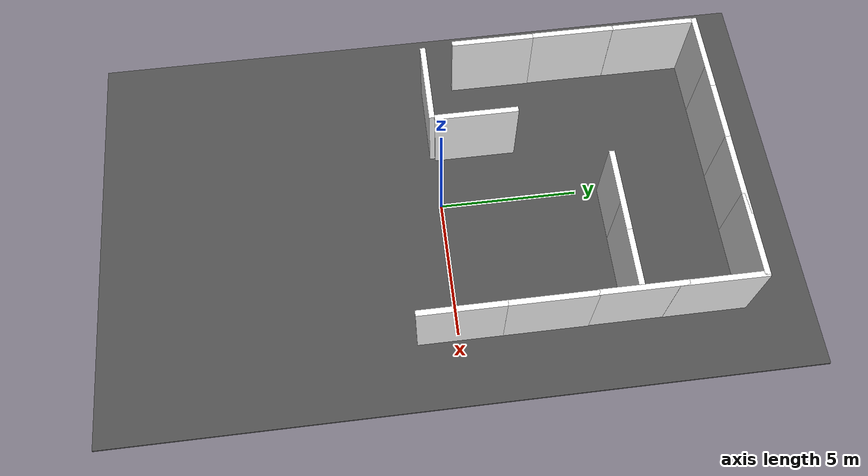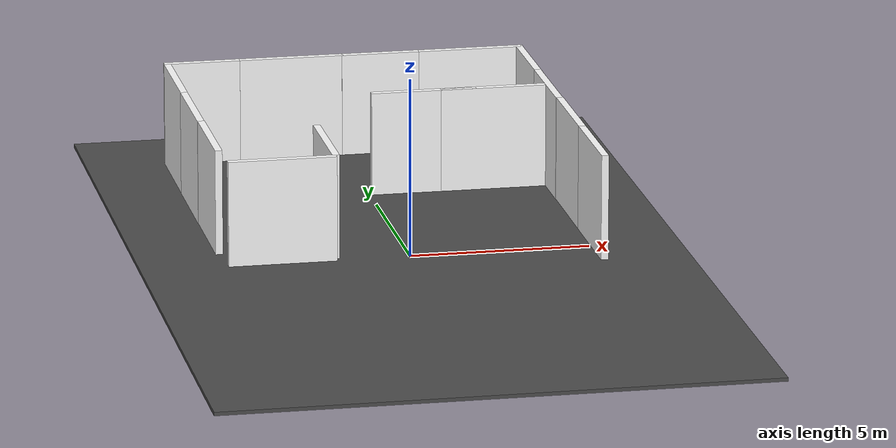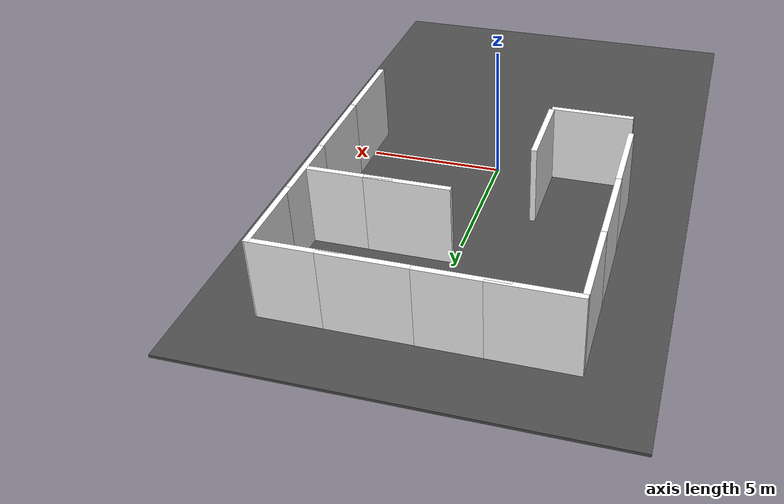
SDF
<sdf version="1.6">
 <world name="default">
  <model name="brick_box_3x0_2x3_0">
   <link name="chassis">
    <pose>0 0 1.5 0 -0 0</pose>
    <velocity_decay><linear>0</linear><angular>0</angular></velocity_decay>
    <inertial>
     <mass>1</mass>
     <inertia><ixx>1</ixx><ixy>0</ixy><ixz>0</ixz><iyy>1</iyy><iyz>0</iyz><izz>1</izz></inertia>
    </inertial>
    <visual name="visual">
     <geometry>
      <mesh><uri>model://brick_box_3x1x3/meshes/simple_box.dae</uri><scale>3 0.2 3</scale></mesh>
     </geometry>
     <material>
      <script>
       <uri>model://brick_box_3x1x3/materials/scripts</uri>
       <uri>model://brick_box_3x1x3/materials/textures</uri>
       <name>BrickBox/Diffuse</name>
      </script>
      <shader type="vertex"><normal_map>__default__</normal_map></shader>
      <ambient>1 1 1 1</ambient>
      <diffuse>1 1 1 1</diffuse>
      <specular>0 0 0 1</specular>
      <emissive>0 0 0 1</emissive>
     </material>
    </visual>
    <collision name="collision">
     <geometry><box><size>3 0.2 3</size></box></geometry>
     <surface>
      <friction>
       <ode><mu>1</mu><mu2>1</mu2><fdir1>0 0 0</fdir1><slip1>0</slip1><slip2>0</slip2></ode>
       <torsional>
        <coefficient>1</coefficient>
        <patch_radius>0</patch_radius>
        <surface_radius>0</surface_radius>
        <use_patch_radius>1</use_patch_radius>
        <ode><slip>0</slip></ode>
       </torsional>
      </friction>
      <bounce><restitution_coefficient>0</restitution_coefficient><threshold>1e+06</threshold></bounce>
      <contact>
       <collide_without_contact>0</collide_without_contact>
       <collide_without_contact_bitmask>1</collide_without_contact_bitmask>
       <collide_bitmask>1</collide_bitmask>
       <ode>
        <soft_cfm>0</soft_cfm>
        <soft_erp>0.2</soft_erp>
        <kp>1e+13</kp>
        <kd>1</kd>
        <max_vel>0.01</max_vel>
        <min_depth>0</min_depth>
       </ode>
       <bullet>
        <split_impulse>1</split_impulse>
        <split_impulse_penetration_threshold>-0.01</split_impulse_penetration_threshold>
        <soft_cfm>0</soft_cfm>
        <soft_erp>0.2</soft_erp>
        <kp>1e+13</kp>
        <kd>1</kd>
       </bullet>
      </contact>
     </surface>
    </collision>
   </link>
   <static>1</static>
   <pose>-1.51839 10.067 0 0 -0 0</pose>
  </model>
  <model name="brick_box_3x0_2x3_0_clone">
   <link name="chassis">
    <pose>0 0 1.5 0 -0 0</pose>
    <velocity_decay><linear>0</linear><angular>0</angular></velocity_decay>
    <inertial>
     <mass>1</mass>
     <inertia><ixx>1</ixx><ixy>0</ixy><ixz>0</ixz><iyy>1</iyy><iyz>0</iyz><izz>1</izz></inertia>
    </inertial>
    <visual name="visual">
     <geometry>
      <mesh><uri>model://brick_box_3x1x3/meshes/simple_box.dae</uri><scale>3 0.2 3</scale></mesh>
     </geometry>
     <material>
      <script>
       <uri>model://brick_box_3x1x3/materials/scripts</uri>
       <uri>model://brick_box_3x1x3/materials/textures</uri>
       <name>BrickBox/Diffuse</name>
      </script>
      <shader type="vertex"><normal_map>__default__</normal_map></shader>
      <ambient>1 1 1 1</ambient>
      <diffuse>1 1 1 1</diffuse>
      <specular>0 0 0 1</specular>
      <emissive>0 0 0 1</emissive>
     </material>
    </visual>
    <collision name="collision">
     <geometry><box><size>3 0.2 3</size></box></geometry>
     <surface>
      <friction>
       <ode><mu>1</mu><mu2>1</mu2><fdir1>0 0 0</fdir1><slip1>0</slip1><slip2>0</slip2></ode>
       <torsional>
        <coefficient>1</coefficient>
        <patch_radius>0</patch_radius>
        <surface_radius>0</surface_radius>
        <use_patch_radius>1</use_patch_radius>
        <ode><slip>0</slip></ode>
       </torsional>
      </friction>
      <bounce><restitution_coefficient>0</restitution_coefficient><threshold>1e+06</threshold></bounce>
      <contact>
       <collide_without_contact>0</collide_without_contact>
       <collide_without_contact_bitmask>1</collide_without_contact_bitmask>
       <collide_bitmask>1</collide_bitmask>
       <ode>
        <soft_cfm>0</soft_cfm>
        <soft_erp>0.2</soft_erp>
        <kp>1e+13</kp>
        <kd>1</kd>
        <max_vel>0.01</max_vel>
        <min_depth>0</min_depth>
       </ode>
       <bullet>
        <split_impulse>1</split_impulse>
        <split_impulse_penetration_threshold>-0.01</split_impulse_penetration_threshold>
        <soft_cfm>0</soft_cfm>
        <soft_erp>0.2</soft_erp>
        <kp>1e+13</kp>
        <kd>1</kd>
       </bullet>
      </contact>
     </surface>
    </collision>
   </link>
   <static>1</static>
   <pose>1.43593 10.0609 0 0 -0 0</pose>
  </model>
  <model name="brick_box_3x0_2x3_0_clone_0">
   <link name="chassis">
    <pose>0 0 1.5 0 -0 0</pose>
    <velocity_decay><linear>0</linear><angular>0</angular></velocity_decay>
    <inertial>
     <mass>1</mass>
     <inertia><ixx>1</ixx><ixy>0</ixy><ixz>0</ixz><iyy>1</iyy><iyz>0</iyz><izz>1</izz></inertia>
    </inertial>
    <visual name="visual">
     <geometry>
      <mesh><uri>model://brick_box_3x1x3/meshes/simple_box.dae</uri><scale>3 0.2 3</scale></mesh>
     </geometry>
     <material>
      <script>
       <uri>model://brick_box_3x1x3/materials/scripts</uri>
       <uri>model://brick_box_3x1x3/materials/textures</uri>
       <name>BrickBox/Diffuse</name>
      </script>
      <shader type="vertex"><normal_map>__default__</normal_map></shader>
      <ambient>1 1 1 1</ambient>
      <diffuse>1 1 1 1</diffuse>
      <specular>0 0 0 1</specular>
      <emissive>0 0 0 1</emissive>
     </material>
    </visual>
    <collision name="collision">
     <geometry><box><size>3 0.2 3</size></box></geometry>
     <surface>
      <friction>
       <ode><mu>1</mu><mu2>1</mu2><fdir1>0 0 0</fdir1><slip1>0</slip1><slip2>0</slip2></ode>
       <torsional>
        <coefficient>1</coefficient>
        <patch_radius>0</patch_radius>
        <surface_radius>0</surface_radius>
        <use_patch_radius>1</use_patch_radius>
        <ode><slip>0</slip></ode>
       </torsional>
      </friction>
      <bounce><restitution_coefficient>0</restitution_coefficient><threshold>1e+06</threshold></bounce>
      <contact>
       <collide_without_contact>0</collide_without_contact>
       <collide_without_contact_bitmask>1</collide_without_contact_bitmask>
       <collide_bitmask>1</collide_bitmask>
       <ode>
        <soft_cfm>0</soft_cfm>
        <soft_erp>0.2</soft_erp>
        <kp>1e+13</kp>
        <kd>1</kd>
        <max_vel>0.01</max_vel>
        <min_depth>0</min_depth>
       </ode>
       <bullet>
        <split_impulse>1</split_impulse>
        <split_impulse_penetration_threshold>-0.01</split_impulse_penetration_threshold>
        <soft_cfm>0</soft_cfm>
        <soft_erp>0.2</soft_erp>
        <kp>1e+13</kp>
        <kd>1</kd>
       </bullet>
      </contact>
     </surface>
    </collision>
   </link>
   <static>1</static>
   <pose>3.67716 10.056 0 0 -0 0</pose>
  </model>
  <model name="brick_box_3x0_2x3_0_clone_1">
   <link name="chassis">
    <pose>0 0 1.5 0 -0 0</pose>
    <velocity_decay><linear>0</linear><angular>0</angular></velocity_decay>
    <inertial>
     <mass>1</mass>
     <inertia><ixx>1</ixx><ixy>0</ixy><ixz>0</ixz><iyy>1</iyy><iyz>0</iyz><izz>1</izz></inertia>
    </inertial>
    <visual name="visual">
     <geometry>
      <mesh><uri>model://brick_box_3x1x3/meshes/simple_box.dae</uri><scale>3 0.2 3</scale></mesh>
     </geometry>
     <material>
      <script>
       <uri>model://brick_box_3x1x3/materials/scripts</uri>
       <uri>model://brick_box_3x1x3/materials/textures</uri>
       <name>BrickBox/Diffuse</name>
      </script>
      <shader type="vertex"><normal_map>__default__</normal_map></shader>
      <ambient>1 1 1 1</ambient>
      <diffuse>1 1 1 1</diffuse>
      <specular>0 0 0 1</specular>
      <emissive>0 0 0 1</emissive>
     </material>
    </visual>
    <collision name="collision">
     <geometry><box><size>3 0.2 3</size></box></geometry>
     <surface>
      <friction>
       <ode><mu>1</mu><mu2>1</mu2><fdir1>0 0 0</fdir1><slip1>0</slip1><slip2>0</slip2></ode>
       <torsional>
        <coefficient>1</coefficient>
        <patch_radius>0</patch_radius>
        <surface_radius>0</surface_radius>
        <use_patch_radius>1</use_patch_radius>
        <ode><slip>0</slip></ode>
       </torsional>
      </friction>
      <bounce><restitution_coefficient>0</restitution_coefficient><threshold>1e+06</threshold></bounce>
      <contact>
       <collide_without_contact>0</collide_without_contact>
       <collide_without_contact_bitmask>1</collide_without_contact_bitmask>
       <collide_bitmask>1</collide_bitmask>
       <ode>
        <soft_cfm>0</soft_cfm>
        <soft_erp>0.2</soft_erp>
        <kp>1e+13</kp>
        <kd>1</kd>
        <max_vel>0.01</max_vel>
        <min_depth>0</min_depth>
       </ode>
       <bullet>
        <split_impulse>1</split_impulse>
        <split_impulse_penetration_threshold>-0.01</split_impulse_penetration_threshold>
        <soft_cfm>0</soft_cfm>
        <soft_erp>0.2</soft_erp>
        <kp>1e+13</kp>
        <kd>1</kd>
       </bullet>
      </contact>
     </surface>
    </collision>
   </link>
   <static>1</static>
   <pose>-3.69017 10.0671 0 0 -0 0</pose>
  </model>
  <model name="brick_box_3x0_2x3_0_clone_2">
   <link name="chassis">
    <pose>0 0 1.5 0 -0 0</pose>
    <velocity_decay><linear>0</linear><angular>0</angular></velocity_decay>
    <inertial>
     <mass>1</mass>
     <inertia><ixx>1</ixx><ixy>0</ixy><ixz>0</ixz><iyy>1</iyy><iyz>0</iyz><izz>1</izz></inertia>
    </inertial>
    <visual name="visual">
     <geometry>
      <mesh><uri>model://brick_box_3x1x3/meshes/simple_box.dae</uri><scale>3 0.2 3</scale></mesh>
     </geometry>
     <material>
      <script>
       <uri>model://brick_box_3x1x3/materials/scripts</uri>
       <uri>model://brick_box_3x1x3/materials/textures</uri>
       <name>BrickBox/Diffuse</name>
      </script>
      <shader type="vertex"><normal_map>__default__</normal_map></shader>
      <ambient>1 1 1 1</ambient>
      <diffuse>1 1 1 1</diffuse>
      <specular>0 0 0 1</specular>
      <emissive>0 0 0 1</emissive>
     </material>
    </visual>
    <collision name="collision">
     <geometry><box><size>3 0.2 3</size></box></geometry>
     <surface>
      <friction>
       <ode><mu>1</mu><mu2>1</mu2><fdir1>0 0 0</fdir1><slip1>0</slip1><slip2>0</slip2></ode>
       <torsional>
        <coefficient>1</coefficient>
        <patch_radius>0</patch_radius>
        <surface_radius>0</surface_radius>
        <use_patch_radius>1</use_patch_radius>
        <ode><slip>0</slip></ode>
       </torsional>
      </friction>
      <bounce><restitution_coefficient>0</restitution_coefficient><threshold>1e+06</threshold></bounce>
      <contact>
       <collide_without_contact>0</collide_without_contact>
       <collide_without_contact_bitmask>1</collide_without_contact_bitmask>
       <collide_bitmask>1</collide_bitmask>
       <ode>
        <soft_cfm>0</soft_cfm>
        <soft_erp>0.2</soft_erp>
        <kp>1e+13</kp>
        <kd>1</kd>
        <max_vel>0.01</max_vel>
        <min_depth>0</min_depth>
       </ode>
       <bullet>
        <split_impulse>1</split_impulse>
        <split_impulse_penetration_threshold>-0.01</split_impulse_penetration_threshold>
        <soft_cfm>0</soft_cfm>
        <soft_erp>0.2</soft_erp>
        <kp>1e+13</kp>
        <kd>1</kd>
       </bullet>
      </contact>
     </surface>
    </collision>
   </link>
   <static>1</static>
   <pose>-5.10653 8.4779 0 0 -0 1.57</pose>
  </model>
  <model name="brick_box_3x0_2x3_0_clone_2_clone">
   <link name="chassis">
    <pose>0 0 1.5 0 -0 0</pose>
    <velocity_decay><linear>0</linear><angular>0</angular></velocity_decay>
    <inertial>
     <mass>1</mass>
     <inertia><ixx>1</ixx><ixy>0</ixy><ixz>0</ixz><iyy>1</iyy><iyz>0</iyz><izz>1</izz></inertia>
    </inertial>
    <visual name="visual">
     <geometry>
      <mesh><uri>model://brick_box_3x1x3/meshes/simple_box.dae</uri><scale>3 0.2 3</scale></mesh>
     </geometry>
     <material>
      <script>
       <uri>model://brick_box_3x1x3/materials/scripts</uri>
       <uri>model://brick_box_3x1x3/materials/textures</uri>
       <name>BrickBox/Diffuse</name>
      </script>
      <shader type="vertex"><normal_map>__default__</normal_map></shader>
      <ambient>1 1 1 1</ambient>
      <diffuse>1 1 1 1</diffuse>
      <specular>0 0 0 1</specular>
      <emissive>0 0 0 1</emissive>
     </material>
    </visual>
    <collision name="collision">
     <geometry><box><size>3 0.2 3</size></box></geometry>
     <surface>
      <friction>
       <ode><mu>1</mu><mu2>1</mu2><fdir1>0 0 0</fdir1><slip1>0</slip1><slip2>0</slip2></ode>
       <torsional>
        <coefficient>1</coefficient>
        <patch_radius>0</patch_radius>
        <surface_radius>0</surface_radius>
        <use_patch_radius>1</use_patch_radius>
        <ode><slip>0</slip></ode>
       </torsional>
      </friction>
      <bounce><restitution_coefficient>0</restitution_coefficient><threshold>1e+06</threshold></bounce>
      <contact>
       <collide_without_contact>0</collide_without_contact>
       <collide_without_contact_bitmask>1</collide_without_contact_bitmask>
       <collide_bitmask>1</collide_bitmask>
       <ode>
        <soft_cfm>0</soft_cfm>
        <soft_erp>0.2</soft_erp>
        <kp>1e+13</kp>
        <kd>1</kd>
        <max_vel>0.01</max_vel>
        <min_depth>0</min_depth>
       </ode>
       <bullet>
        <split_impulse>1</split_impulse>
        <split_impulse_penetration_threshold>-0.01</split_impulse_penetration_threshold>
        <soft_cfm>0</soft_cfm>
        <soft_erp>0.2</soft_erp>
        <kp>1e+13</kp>
        <kd>1</kd>
       </bullet>
      </contact>
     </surface>
    </collision>
   </link>
   <static>1</static>
   <pose>-5.11526 5.49974 0 0 -0 1.57</pose>
  </model>
  <model name="brick_box_3x0_2x3_0_clone_2_clone_0">
   <link name="chassis">
    <pose>0 0 1.5 0 -0 0</pose>
    <velocity_decay><linear>0</linear><angular>0</angular></velocity_decay>
    <inertial>
     <mass>1</mass>
     <inertia><ixx>1</ixx><ixy>0</ixy><ixz>0</ixz><iyy>1</iyy><iyz>0</iyz><izz>1</izz></inertia>
    </inertial>
    <visual name="visual">
     <geometry>
      <mesh><uri>model://brick_box_3x1x3/meshes/simple_box.dae</uri><scale>3 0.2 3</scale></mesh>
     </geometry>
     <material>
      <script>
       <uri>model://brick_box_3x1x3/materials/scripts</uri>
       <uri>model://brick_box_3x1x3/materials/textures</uri>
       <name>BrickBox/Diffuse</name>
      </script>
      <shader type="vertex"><normal_map>__default__</normal_map></shader>
      <ambient>1 1 1 1</ambient>
      <diffuse>1 1 1 1</diffuse>
      <specular>0 0 0 1</specular>
      <emissive>0 0 0 1</emissive>
     </material>
    </visual>
    <collision name="collision">
     <geometry><box><size>3 0.2 3</size></box></geometry>
     <surface>
      <friction>
       <ode><mu>1</mu><mu2>1</mu2><fdir1>0 0 0</fdir1><slip1>0</slip1><slip2>0</slip2></ode>
       <torsional>
        <coefficient>1</coefficient>
        <patch_radius>0</patch_radius>
        <surface_radius>0</surface_radius>
        <use_patch_radius>1</use_patch_radius>
        <ode><slip>0</slip></ode>
       </torsional>
      </friction>
      <bounce><restitution_coefficient>0</restitution_coefficient><threshold>1e+06</threshold></bounce>
      <contact>
       <collide_without_contact>0</collide_without_contact>
       <collide_without_contact_bitmask>1</collide_without_contact_bitmask>
       <collide_bitmask>1</collide_bitmask>
       <ode>
        <soft_cfm>0</soft_cfm>
        <soft_erp>0.2</soft_erp>
        <kp>1e+13</kp>
        <kd>1</kd>
        <max_vel>0.01</max_vel>
        <min_depth>0</min_depth>
       </ode>
       <bullet>
        <split_impulse>1</split_impulse>
        <split_impulse_penetration_threshold>-0.01</split_impulse_penetration_threshold>
        <soft_cfm>0</soft_cfm>
        <soft_erp>0.2</soft_erp>
        <kp>1e+13</kp>
        <kd>1</kd>
       </bullet>
      </contact>
     </surface>
    </collision>
   </link>
   <static>1</static>
   <pose>-5.10794 2.50232 0 0 -0 1.57</pose>
  </model>
  <model name="brick_box_3x0_2x3_0_clone_2_clone_1_clone_1_clone_2">
   <link name="chassis">
    <pose>0 0 1.5 0 -0 0</pose>
    <velocity_decay><linear>0</linear><angular>0</angular></velocity_decay>
    <inertial>
     <mass>1</mass>
     <inertia><ixx>1</ixx><ixy>0</ixy><ixz>0</ixz><iyy>1</iyy><iyz>0</iyz><izz>1</izz></inertia>
    </inertial>
    <visual name="visual">
     <geometry>
      <mesh><uri>model://brick_box_3x1x3/meshes/simple_box.dae</uri><scale>3 0.2 3</scale></mesh>
     </geometry>
     <material>
      <script>
       <uri>model://brick_box_3x1x3/materials/scripts</uri>
       <uri>model://brick_box_3x1x3/materials/textures</uri>
       <name>BrickBox/Diffuse</name>
      </script>
      <shader type="vertex"><normal_map>__default__</normal_map></shader>
      <ambient>1 1 1 1</ambient>
      <diffuse>1 1 1 1</diffuse>
      <specular>0 0 0 1</specular>
      <emissive>0 0 0 1</emissive>
     </material>
    </visual>
    <collision name="collision">
     <geometry><box><size>3 0.2 3</size></box></geometry>
     <surface>
      <friction>
       <ode><mu>1</mu><mu2>1</mu2><fdir1>0 0 0</fdir1><slip1>0</slip1><slip2>0</slip2></ode>
       <torsional>
        <coefficient>1</coefficient>
        <patch_radius>0</patch_radius>
        <surface_radius>0</surface_radius>
        <use_patch_radius>1</use_patch_radius>
        <ode><slip>0</slip></ode>
       </torsional>
      </friction>
      <bounce><restitution_coefficient>0</restitution_coefficient><threshold>1e+06</threshold></bounce>
      <contact>
       <collide_without_contact>0</collide_without_contact>
       <collide_without_contact_bitmask>1</collide_without_contact_bitmask>
       <collide_bitmask>1</collide_bitmask>
       <ode>
        <soft_cfm>0</soft_cfm>
        <soft_erp>0.2</soft_erp>
        <kp>1e+13</kp>
        <kd>1</kd>
        <max_vel>0.01</max_vel>
        <min_depth>0</min_depth>
       </ode>
       <bullet>
        <split_impulse>1</split_impulse>
        <split_impulse_penetration_threshold>-0.01</split_impulse_penetration_threshold>
        <soft_cfm>0</soft_cfm>
        <soft_erp>0.2</soft_erp>
        <kp>1e+13</kp>
        <kd>1</kd>
       </bullet>
      </contact>
     </surface>
    </collision>
   </link>
   <static>1</static>
   <pose>5.11899 0.040939 0 0 -0 1.57</pose>
  </model>
  <model name="brick_box_3x0_2x3_0_clone_2_clone_1_clone_1_clone_3">
   <link name="chassis">
    <pose>0 0 1.5 0 -0 0</pose>
    <velocity_decay><linear>0</linear><angular>0</angular></velocity_decay>
    <inertial>
     <mass>1</mass>
     <inertia><ixx>1</ixx><ixy>0</ixy><ixz>0</ixz><iyy>1</iyy><iyz>0</iyz><izz>1</izz></inertia>
    </inertial>
    <visual name="visual">
     <geometry>
      <mesh><uri>model://brick_box_3x1x3/meshes/simple_box.dae</uri><scale>3 0.2 3</scale></mesh>
     </geometry>
     <material>
      <script>
       <uri>model://brick_box_3x1x3/materials/scripts</uri>
       <uri>model://brick_box_3x1x3/materials/textures</uri>
       <name>BrickBox/Diffuse</name>
      </script>
      <shader type="vertex"><normal_map>__default__</normal_map></shader>
      <ambient>1 1 1 1</ambient>
      <diffuse>1 1 1 1</diffuse>
      <specular>0 0 0 1</specular>
      <emissive>0 0 0 1</emissive>
     </material>
    </visual>
    <collision name="collision">
     <geometry><box><size>3 0.2 3</size></box></geometry>
     <surface>
      <friction>
       <ode><mu>1</mu><mu2>1</mu2><fdir1>0 0 0</fdir1><slip1>0</slip1><slip2>0</slip2></ode>
       <torsional>
        <coefficient>1</coefficient>
        <patch_radius>0</patch_radius>
        <surface_radius>0</surface_radius>
        <use_patch_radius>1</use_patch_radius>
        <ode><slip>0</slip></ode>
       </torsional>
      </friction>
      <bounce><restitution_coefficient>0</restitution_coefficient><threshold>1e+06</threshold></bounce>
      <contact>
       <collide_without_contact>0</collide_without_contact>
       <collide_without_contact_bitmask>1</collide_without_contact_bitmask>
       <collide_bitmask>1</collide_bitmask>
       <ode>
        <soft_cfm>0</soft_cfm>
        <soft_erp>0.2</soft_erp>
        <kp>1e+13</kp>
        <kd>1</kd>
        <max_vel>0.01</max_vel>
        <min_depth>0</min_depth>
       </ode>
       <bullet>
        <split_impulse>1</split_impulse>
        <split_impulse_penetration_threshold>-0.01</split_impulse_penetration_threshold>
        <soft_cfm>0</soft_cfm>
        <soft_erp>0.2</soft_erp>
        <kp>1e+13</kp>
        <kd>1</kd>
       </bullet>
      </contact>
     </surface>
    </collision>
   </link>
   <static>1</static>
   <pose>5.12258 3.02481 0 0 -0 1.57</pose>
  </model>
  <model name="brick_box_3x0_2x3_0_clone_2_clone_1_clone_1_clone_3_clone">
   <link name="chassis">
    <pose>0 0 1.5 0 -0 0</pose>
    <velocity_decay><linear>0</linear><angular>0</angular></velocity_decay>
    <inertial>
     <mass>1</mass>
     <inertia><ixx>1</ixx><ixy>0</ixy><ixz>0</ixz><iyy>1</iyy><iyz>0</iyz><izz>1</izz></inertia>
    </inertial>
    <visual name="visual">
     <geometry>
      <mesh><uri>model://brick_box_3x1x3/meshes/simple_box.dae</uri><scale>3 0.2 3</scale></mesh>
     </geometry>
     <material>
      <script>
       <uri>model://brick_box_3x1x3/materials/scripts</uri>
       <uri>model://brick_box_3x1x3/materials/textures</uri>
       <name>BrickBox/Diffuse</name>
      </script>
      <shader type="vertex"><normal_map>__default__</normal_map></shader>
      <ambient>1 1 1 1</ambient>
      <diffuse>1 1 1 1</diffuse>
      <specular>0 0 0 1</specular>
      <emissive>0 0 0 1</emissive>
     </material>
    </visual>
    <collision name="collision">
     <geometry><box><size>3 0.2 3</size></box></geometry>
     <surface>
      <friction>
       <ode><mu>1</mu><mu2>1</mu2><fdir1>0 0 0</fdir1><slip1>0</slip1><slip2>0</slip2></ode>
       <torsional>
        <coefficient>1</coefficient>
        <patch_radius>0</patch_radius>
        <surface_radius>0</surface_radius>
        <use_patch_radius>1</use_patch_radius>
        <ode><slip>0</slip></ode>
       </torsional>
      </friction>
      <bounce><restitution_coefficient>0</restitution_coefficient><threshold>1e+06</threshold></bounce>
      <contact>
       <collide_without_contact>0</collide_without_contact>
       <collide_without_contact_bitmask>1</collide_without_contact_bitmask>
       <collide_bitmask>1</collide_bitmask>
       <ode>
        <soft_cfm>0</soft_cfm>
        <soft_erp>0.2</soft_erp>
        <kp>1e+13</kp>
        <kd>1</kd>
        <max_vel>0.01</max_vel>
        <min_depth>0</min_depth>
       </ode>
       <bullet>
        <split_impulse>1</split_impulse>
        <split_impulse_penetration_threshold>-0.01</split_impulse_penetration_threshold>
        <soft_cfm>0</soft_cfm>
        <soft_erp>0.2</soft_erp>
        <kp>1e+13</kp>
        <kd>1</kd>
       </bullet>
      </contact>
     </surface>
    </collision>
   </link>
   <static>1</static>
   <pose>5.11091 5.97832 0 0 -0 1.57</pose>
  </model>
  <model name="brick_box_3x0_2x3_0_clone_2_clone_1_clone_1_clone_3_clone_0">
   <link name="chassis">
    <pose>0 0 1.5 0 -0 0</pose>
    <velocity_decay><linear>0</linear><angular>0</angular></velocity_decay>
    <inertial>
     <mass>1</mass>
     <inertia><ixx>1</ixx><ixy>0</ixy><ixz>0</ixz><iyy>1</iyy><iyz>0</iyz><izz>1</izz></inertia>
    </inertial>
    <visual name="visual">
     <geometry>
      <mesh><uri>model://brick_box_3x1x3/meshes/simple_box.dae</uri><scale>3 0.2 3</scale></mesh>
     </geometry>
     <material>
      <script>
       <uri>model://brick_box_3x1x3/materials/scripts</uri>
       <uri>model://brick_box_3x1x3/materials/textures</uri>
       <name>BrickBox/Diffuse</name>
      </script>
      <shader type="vertex"><normal_map>__default__</normal_map></shader>
      <ambient>1 1 1 1</ambient>
      <diffuse>1 1 1 1</diffuse>
      <specular>0 0 0 1</specular>
      <emissive>0 0 0 1</emissive>
     </material>
    </visual>
    <collision name="collision">
     <geometry><box><size>3 0.2 3</size></box></geometry>
     <surface>
      <friction>
       <ode><mu>1</mu><mu2>1</mu2><fdir1>0 0 0</fdir1><slip1>0</slip1><slip2>0</slip2></ode>
       <torsional>
        <coefficient>1</coefficient>
        <patch_radius>0</patch_radius>
        <surface_radius>0</surface_radius>
        <use_patch_radius>1</use_patch_radius>
        <ode><slip>0</slip></ode>
       </torsional>
      </friction>
      <bounce><restitution_coefficient>0</restitution_coefficient><threshold>1e+06</threshold></bounce>
      <contact>
       <collide_without_contact>0</collide_without_contact>
       <collide_without_contact_bitmask>1</collide_without_contact_bitmask>
       <collide_bitmask>1</collide_bitmask>
       <ode>
        <soft_cfm>0</soft_cfm>
        <soft_erp>0.2</soft_erp>
        <kp>1e+13</kp>
        <kd>1</kd>
        <max_vel>0.01</max_vel>
        <min_depth>0</min_depth>
       </ode>
       <bullet>
        <split_impulse>1</split_impulse>
        <split_impulse_penetration_threshold>-0.01</split_impulse_penetration_threshold>
        <soft_cfm>0</soft_cfm>
        <soft_erp>0.2</soft_erp>
        <kp>1e+13</kp>
        <kd>1</kd>
       </bullet>
      </contact>
     </surface>
    </collision>
   </link>
   <static>1</static>
   <pose>5.1189 8.65328 0 0 -0 1.57</pose>
  </model>
  <model name="brick_box_3x0_2x3_0_clone_0_clone">
   <link name="chassis">
    <pose>0 0 1.5 0 -0 0</pose>
    <velocity_decay><linear>0</linear><angular>0</angular></velocity_decay>
    <inertial>
     <mass>1</mass>
     <inertia><ixx>1</ixx><ixy>0</ixy><ixz>0</ixz><iyy>1</iyy><iyz>0</iyz><izz>1</izz></inertia>
    </inertial>
    <visual name="visual">
     <geometry>
      <mesh><uri>model://brick_box_3x1x3/meshes/simple_box.dae</uri><scale>3 0.2 3</scale></mesh>
     </geometry>
     <material>
      <script>
       <uri>model://brick_box_3x1x3/materials/scripts</uri>
       <uri>model://brick_box_3x1x3/materials/textures</uri>
       <name>BrickBox/Diffuse</name>
      </script>
      <shader type="vertex"><normal_map>__default__</normal_map></shader>
      <ambient>1 1 1 1</ambient>
      <diffuse>1 1 1 1</diffuse>
      <specular>0 0 0 1</specular>
      <emissive>0 0 0 1</emissive>
     </material>
    </visual>
    <collision name="collision">
     <geometry><box><size>3 0.2 3</size></box></geometry>
     <surface>
      <friction>
       <ode><mu>1</mu><mu2>1</mu2><fdir1>0 0 0</fdir1><slip1>0</slip1><slip2>0</slip2></ode>
       <torsional>
        <coefficient>1</coefficient>
        <patch_radius>0</patch_radius>
        <surface_radius>0</surface_radius>
        <use_patch_radius>1</use_patch_radius>
        <ode><slip>0</slip></ode>
       </torsional>
      </friction>
      <bounce><restitution_coefficient>0</restitution_coefficient><threshold>1e+06</threshold></bounce>
      <contact>
       <collide_without_contact>0</collide_without_contact>
       <collide_without_contact_bitmask>1</collide_without_contact_bitmask>
       <collide_bitmask>1</collide_bitmask>
       <ode>
        <soft_cfm>0</soft_cfm>
        <soft_erp>0.2</soft_erp>
        <kp>1e+13</kp>
        <kd>1</kd>
        <max_vel>0.01</max_vel>
        <min_depth>0</min_depth>
       </ode>
       <bullet>
        <split_impulse>1</split_impulse>
        <split_impulse_penetration_threshold>-0.01</split_impulse_penetration_threshold>
        <soft_cfm>0</soft_cfm>
        <soft_erp>0.2</soft_erp>
        <kp>1e+13</kp>
        <kd>1</kd>
       </bullet>
      </contact>
     </surface>
    </collision>
   </link>
   <static>1</static>
   <pose>3.50992 5.92113 0 0 -0 0</pose>
  </model>
  <model name="brick_box_3x0_2x3_0_clone_0_clone_0">
   <link name="chassis">
    <pose>0 0 1.5 0 -0 0</pose>
    <velocity_decay><linear>0</linear><angular>0</angular></velocity_decay>
    <inertial>
     <mass>1</mass>
     <inertia><ixx>1</ixx><ixy>0</ixy><ixz>0</ixz><iyy>1</iyy><iyz>0</iyz><izz>1</izz></inertia>
    </inertial>
    <visual name="visual">
     <geometry>
      <mesh><uri>model://brick_box_3x1x3/meshes/simple_box.dae</uri><scale>3 0.2 3</scale></mesh>
     </geometry>
     <material>
      <script>
       <uri>model://brick_box_3x1x3/materials/scripts</uri>
       <uri>model://brick_box_3x1x3/materials/textures</uri>
       <name>BrickBox/Diffuse</name>
      </script>
      <shader type="vertex"><normal_map>__default__</normal_map></shader>
      <ambient>1 1 1 1</ambient>
      <diffuse>1 1 1 1</diffuse>
      <specular>0 0 0 1</specular>
      <emissive>0 0 0 1</emissive>
     </material>
    </visual>
    <collision name="collision">
     <geometry><box><size>3 0.2 3</size></box></geometry>
     <surface>
      <friction>
       <ode><mu>1</mu><mu2>1</mu2><fdir1>0 0 0</fdir1><slip1>0</slip1><slip2>0</slip2></ode>
       <torsional>
        <coefficient>1</coefficient>
        <patch_radius>0</patch_radius>
        <surface_radius>0</surface_radius>
        <use_patch_radius>1</use_patch_radius>
        <ode><slip>0</slip></ode>
       </torsional>
      </friction>
      <bounce><restitution_coefficient>0</restitution_coefficient><threshold>1e+06</threshold></bounce>
      <contact>
       <collide_without_contact>0</collide_without_contact>
       <collide_without_contact_bitmask>1</collide_without_contact_bitmask>
       <collide_bitmask>1</collide_bitmask>
       <ode>
        <soft_cfm>0</soft_cfm>
        <soft_erp>0.2</soft_erp>
        <kp>1e+13</kp>
        <kd>1</kd>
        <max_vel>0.01</max_vel>
        <min_depth>0</min_depth>
       </ode>
       <bullet>
        <split_impulse>1</split_impulse>
        <split_impulse_penetration_threshold>-0.01</split_impulse_penetration_threshold>
        <soft_cfm>0</soft_cfm>
        <soft_erp>0.2</soft_erp>
        <kp>1e+13</kp>
        <kd>1</kd>
       </bullet>
      </contact>
     </surface>
    </collision>
   </link>
   <static>1</static>
   <pose>1.52474 5.92543 0 0 -0 0</pose>
  </model>
  <model name="brick_box_3x0_2x3_0_clone_0_clone_0_clone">
   <link name="chassis">
    <pose>0 0 1.5 0 -0 0</pose>
    <velocity_decay><linear>0</linear><angular>0</angular></velocity_decay>
    <inertial>
     <mass>1</mass>
     <inertia><ixx>1</ixx><ixy>0</ixy><ixz>0</ixz><iyy>1</iyy><iyz>0</iyz><izz>1</izz></inertia>
    </inertial>
    <visual name="visual">
     <geometry>
      <mesh><uri>model://brick_box_3x1x3/meshes/simple_box.dae</uri><scale>3 0.2 3</scale></mesh>
     </geometry>
     <material>
      <script>
       <uri>model://brick_box_3x1x3/materials/scripts</uri>
       <uri>model://brick_box_3x1x3/materials/textures</uri>
       <name>BrickBox/Diffuse</name>
      </script>
      <shader type="vertex"><normal_map>__default__</normal_map></shader>
      <ambient>1 1 1 1</ambient>
      <diffuse>1 1 1 1</diffuse>
      <specular>0 0 0 1</specular>
      <emissive>0 0 0 1</emissive>
     </material>
    </visual>
    <collision name="collision">
     <geometry><box><size>3 0.2 3</size></box></geometry>
     <surface>
      <friction>
       <ode><mu>1</mu><mu2>1</mu2><fdir1>0 0 0</fdir1><slip1>0</slip1><slip2>0</slip2></ode>
       <torsional>
        <coefficient>1</coefficient>
        <patch_radius>0</patch_radius>
        <surface_radius>0</surface_radius>
        <use_patch_radius>1</use_patch_radius>
        <ode><slip>0</slip></ode>
       </torsional>
      </friction>
      <bounce><restitution_coefficient>0</restitution_coefficient><threshold>1e+06</threshold></bounce>
      <contact>
       <collide_without_contact>0</collide_without_contact>
       <collide_without_contact_bitmask>1</collide_without_contact_bitmask>
       <collide_bitmask>1</collide_bitmask>
       <ode>
        <soft_cfm>0</soft_cfm>
        <soft_erp>0.2</soft_erp>
        <kp>1e+13</kp>
        <kd>1</kd>
        <max_vel>0.01</max_vel>
        <min_depth>0</min_depth>
       </ode>
       <bullet>
        <split_impulse>1</split_impulse>
        <split_impulse_penetration_threshold>-0.01</split_impulse_penetration_threshold>
        <soft_cfm>0</soft_cfm>
        <soft_erp>0.2</soft_erp>
        <kp>1e+13</kp>
        <kd>1</kd>
       </bullet>
      </contact>
     </surface>
    </collision>
   </link>
   <static>1</static>
   <pose>-3.54602 -0.093601 0 0 -0 0</pose>
  </model>
  <model name="brick_box_3x0_2x3_0_clone_2_clone_1_clone_1_clone_0_clone_clone_clone_1">
   <link name="chassis">
    <pose>0 0 1.5 0 -0 0</pose>
    <velocity_decay><linear>0</linear><angular>0</angular></velocity_decay>
    <inertial>
     <mass>1</mass>
     <inertia><ixx>1</ixx><ixy>0</ixy><ixz>0</ixz><iyy>1</iyy><iyz>0</iyz><izz>1</izz></inertia>
    </inertial>
    <visual name="visual">
     <geometry>
      <mesh><uri>model://brick_box_3x1x3/meshes/simple_box.dae</uri><scale>3 0.2 3</scale></mesh>
     </geometry>
     <material>
      <script>
       <uri>model://brick_box_3x1x3/materials/scripts</uri>
       <uri>model://brick_box_3x1x3/materials/textures</uri>
       <name>BrickBox/Diffuse</name>
      </script>
      <shader type="vertex"><normal_map>__default__</normal_map></shader>
      <ambient>1 1 1 1</ambient>
      <diffuse>1 1 1 1</diffuse>
      <specular>0 0 0 1</specular>
      <emissive>0 0 0 1</emissive>
     </material>
    </visual>
    <collision name="collision">
     <geometry><box><size>3 0.2 3</size></box></geometry>
     <surface>
      <friction>
       <ode><mu>1</mu><mu2>1</mu2><fdir1>0 0 0</fdir1><slip1>0</slip1><slip2>0</slip2></ode>
       <torsional>
        <coefficient>1</coefficient>
        <patch_radius>0</patch_radius>
        <surface_radius>0</surface_radius>
        <use_patch_radius>1</use_patch_radius>
        <ode><slip>0</slip></ode>
       </torsional>
      </friction>
      <bounce><restitution_coefficient>0</restitution_coefficient><threshold>1e+06</threshold></bounce>
      <contact>
       <collide_without_contact>0</collide_without_contact>
       <collide_without_contact_bitmask>1</collide_without_contact_bitmask>
       <collide_bitmask>1</collide_bitmask>
       <ode>
        <soft_cfm>0</soft_cfm>
        <soft_erp>0.2</soft_erp>
        <kp>1e+13</kp>
        <kd>1</kd>
        <max_vel>0.01</max_vel>
        <min_depth>0</min_depth>
       </ode>
       <bullet>
        <split_impulse>1</split_impulse>
        <split_impulse_penetration_threshold>-0.01</split_impulse_penetration_threshold>
        <soft_cfm>0</soft_cfm>
        <soft_erp>0.2</soft_erp>
        <kp>1e+13</kp>
        <kd>1</kd>
       </bullet>
      </contact>
     </surface>
    </collision>
   </link>
   <static>1</static>
   <pose>-2.04733 1.49531 0 0 -0 1.57</pose>
  </model>
  <model name="asphalt_plane_clone_clone_clone_0_clone">
   <link name="link">
    <velocity_decay><linear>0</linear><angular>0</angular></velocity_decay>
    <inertial>
     <mass>1</mass>
     <inertia><ixx>1</ixx><ixy>0</ixy><ixz>0</ixz><iyy>1</iyy><iyz>0</iyz><izz>1</izz></inertia>
    </inertial>
    <visual name="visual">
     <cast_shadows>0</cast_shadows>
     <geometry><box><size>15 25 0.1</size></box></geometry>
     <material>
      <script>
       <uri>model://asphalt_plane/materials/scripts</uri>
       <uri>model://asphalt_plane/materials/textures</uri>
       <name>vrc/asphalt</name>
      </script>
      <shader type="vertex"><normal_map>__default__</normal_map></shader>
      <ambient>0.5 0.5 0.5 1</ambient>
      <diffuse>0.5 0.5 0.5 1</diffuse>
      <specular>0.2 0.2 0.2 1</specular>
      <emissive>0 0 0 1</emissive>
     </material>
    </visual>
    <collision name="collision">
     <geometry><box><size>15 25 0.1</size></box></geometry>
     <surface>
      <friction>
       <ode><mu>1</mu><mu2>1</mu2><fdir1>0 0 0</fdir1><slip1>0</slip1><slip2>0</slip2></ode>
       <torsional>
        <coefficient>1</coefficient>
        <patch_radius>0</patch_radius>
        <surface_radius>0</surface_radius>
        <use_patch_radius>1</use_patch_radius>
        <ode><slip>0</slip></ode>
       </torsional>
      </friction>
      <bounce><restitution_coefficient>0</restitution_coefficient><threshold>1e+06</threshold></bounce>
      <contact>
       <collide_without_contact>0</collide_without_contact>
       <collide_without_contact_bitmask>1</collide_without_contact_bitmask>
       <collide_bitmask>1</collide_bitmask>
       <ode>
        <soft_cfm>0</soft_cfm>
        <soft_erp>0.2</soft_erp>
        <kp>1e+13</kp>
        <kd>1</kd>
        <max_vel>0.01</max_vel>
        <min_depth>0</min_depth>
       </ode>
       <bullet>
        <split_impulse>1</split_impulse>
        <split_impulse_penetration_threshold>-0.01</split_impulse_penetration_threshold>
        <soft_cfm>0</soft_cfm>
        <soft_erp>0.2</soft_erp>
        <kp>1e+13</kp>
        <kd>1</kd>
       </bullet>
      </contact>
     </surface>
    </collision>
   </link>
   <static>1</static>
   <pose>0.035306 0.028134 0 0 -0 0</pose>
  </model>
 </world>
</sdf>
